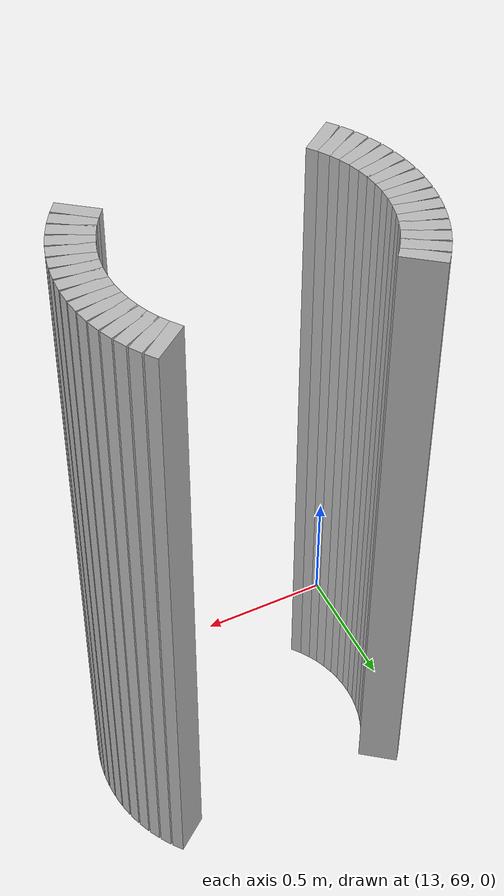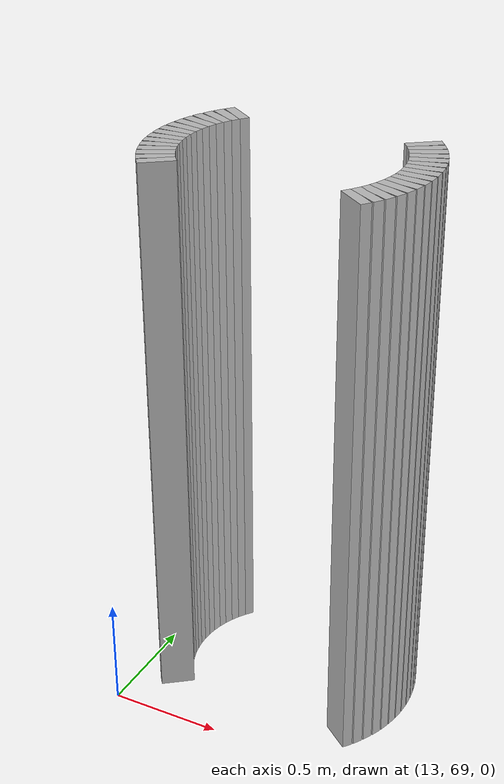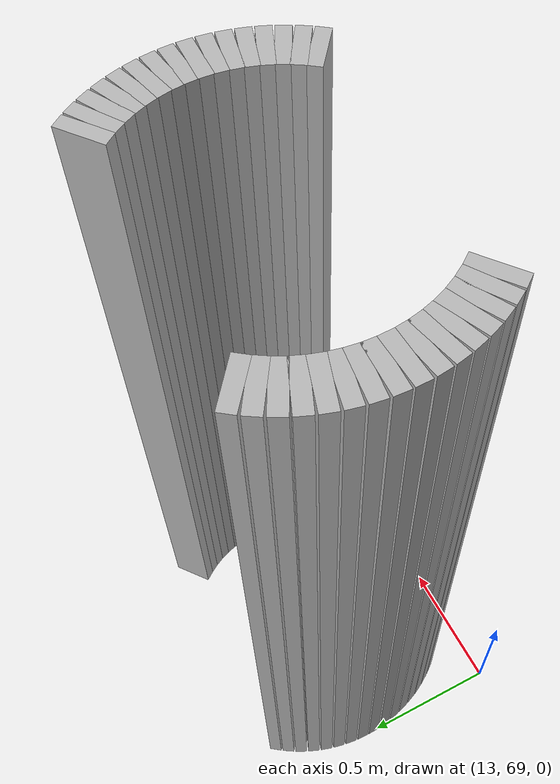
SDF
<sdf version="1.6">
 <model name="sps_1002">
  <static>1</static>
  <allow_auto_disable>0</allow_auto_disable>
  <link name="Wall2003">
   <collision name="collision"><geometry><box><size>0.0453637 0.15 2.5</size></box></geometry></collision>
   <visual name="visual">
    <geometry><box><size>0.0453637 0.15 2.5</size></box></geometry>
    <transparency>0.0</transparency>
   </visual>
   <pose>14.0033 69.8585 1.25 0 0 -0.91707</pose>
  </link>
  <link name="Wall2004">
   <collision name="collision"><geometry><box><size>0.0452906 0.15 2.5</size></box></geometry></collision>
   <visual name="visual">
    <geometry><box><size>0.0452906 0.15 2.5</size></box></geometry>
    <transparency>0.0</transparency>
   </visual>
   <pose>14.0293 69.8214 1.25 0 0 -1.00148</pose>
  </link>
  <link name="Wall2005">
   <collision name="collision"><geometry><box><size>0.045288 0.15 2.5</size></box></geometry></collision>
   <visual name="visual">
    <geometry><box><size>0.045288 0.15 2.5</size></box></geometry>
    <transparency>0.0</transparency>
   </visual>
   <pose>14.0519 69.7822 1.25 0 0 -1.09329</pose>
  </link>
  <link name="Wall2006">
   <collision name="collision"><geometry><box><size>0.0454525 0.15 2.5</size></box></geometry></collision>
   <visual name="visual">
    <geometry><box><size>0.0454525 0.15 2.5</size></box></geometry>
    <transparency>0.0</transparency>
   </visual>
   <pose>14.071 69.7411 1.25 0 0 -1.17807</pose>
  </link>
  <link name="Wall2007">
   <collision name="collision"><geometry><box><size>0.0453057 0.15 2.5</size></box></geometry></collision>
   <visual name="visual">
    <geometry><box><size>0.0453057 0.15 2.5</size></box></geometry>
    <transparency>0.0</transparency>
   </visual>
   <pose>14.0865 69.6985 1.25 0 0 -1.26566</pose>
  </link>
  <link name="Wall2008">
   <collision name="collision"><geometry><box><size>0.0454345 0.15 2.5</size></box></geometry></collision>
   <visual name="visual">
    <geometry><box><size>0.0454345 0.15 2.5</size></box></geometry>
    <transparency>0.0</transparency>
   </visual>
   <pose>14.0982 69.6547 1.25 0 0 -1.35417</pose>
  </link>
  <link name="Wall2009">
   <collision name="collision"><geometry><box><size>0.0454394 0.15 2.5</size></box></geometry></collision>
   <visual name="visual">
    <geometry><box><size>0.0454394 0.15 2.5</size></box></geometry>
    <transparency>0.0</transparency>
   </visual>
   <pose>14.106 69.61 1.25 0 0 -1.43878</pose>
  </link>
  <link name="Wall2010">
   <collision name="collision"><geometry><box><size>0.0452109 0.15 2.5</size></box></geometry></collision>
   <visual name="visual">
    <geometry><box><size>0.0452109 0.15 2.5</size></box></geometry>
    <transparency>0.0</transparency>
   </visual>
   <pose>14.11 69.5649 1.25 0 0 -1.52623</pose>
  </link>
  <link name="Wall2011">
   <collision name="collision"><geometry><box><size>0.0454548 0.15 2.5</size></box></geometry></collision>
   <visual name="visual">
    <geometry><box><size>0.0454548 0.15 2.5</size></box></geometry>
    <transparency>0.0</transparency>
   </visual>
   <pose>14.11 69.5196 1.25 0 0 -1.61512</pose>
  </link>
  <link name="Wall2012">
   <collision name="collision"><geometry><box><size>0.0453788 0.15 2.5</size></box></geometry></collision>
   <visual name="visual">
    <geometry><box><size>0.0453788 0.15 2.5</size></box></geometry>
    <transparency>0.0</transparency>
   </visual>
   <pose>14.106 69.4744 1.25 0 0 -1.70299</pose>
  </link>
  <link name="Wall2013">
   <collision name="collision"><geometry><box><size>0.0453153 0.15 2.5</size></box></geometry></collision>
   <visual name="visual">
    <geometry><box><size>0.0453153 0.15 2.5</size></box></geometry>
    <transparency>0.0</transparency>
   </visual>
   <pose>14.0982 69.4298 1.25 0 0 -1.788</pose>
  </link>
  <link name="Wall2014">
   <collision name="collision"><geometry><box><size>0.0452475 0.15 2.5</size></box></geometry></collision>
   <visual name="visual">
    <geometry><box><size>0.0452475 0.15 2.5</size></box></geometry>
    <transparency>0.0</transparency>
   </visual>
   <pose>14.0865 69.3861 1.25 0 0 -1.87634</pose>
  </link>
  <link name="Wall2015">
   <collision name="collision"><geometry><box><size>0.0455089 0.15 2.5</size></box></geometry></collision>
   <visual name="visual">
    <geometry><box><size>0.0455089 0.15 2.5</size></box></geometry>
    <transparency>0.0</transparency>
   </visual>
   <pose>14.071 69.3435 1.25 0 0 -1.96301</pose>
  </link>
  <link name="Wall2016">
   <collision name="collision"><geometry><box><size>0.0453183 0.15 2.5</size></box></geometry></collision>
   <visual name="visual">
    <geometry><box><size>0.0453183 0.15 2.5</size></box></geometry>
    <transparency>0.0</transparency>
   </visual>
   <pose>14.0518 69.3024 1.25 0 0 -2.05251</pose>
  </link>
  <link name="Wall2017">
   <collision name="collision"><geometry><box><size>0.045342 0.15 2.5</size></box></geometry></collision>
   <visual name="visual">
    <geometry><box><size>0.045342 0.15 2.5</size></box></geometry>
    <transparency>0.0</transparency>
   </visual>
   <pose>14.0291 69.2632 1.25 0 0 -2.13938</pose>
  </link>
  <link name="Wall2018">
   <collision name="collision"><geometry><box><size>0.0453637 0.15 2.5</size></box></geometry></collision>
   <visual name="visual">
    <geometry><box><size>0.0453637 0.15 2.5</size></box></geometry>
    <transparency>0.0</transparency>
   </visual>
   <pose>14.0031 69.2261 1.25 0 0 -2.22452</pose>
  </link>
  <link name="Wall2039">
   <collision name="collision"><geometry><box><size>0.0453637 0.15 2.5</size></box></geometry></collision>
   <visual name="visual">
    <geometry><box><size>0.0453637 0.15 2.5</size></box></geometry>
    <transparency>0.0</transparency>
   </visual>
   <pose>13.1787 69.2263 1.25 0 -0 2.22452</pose>
  </link>
  <link name="Wall2040">
   <collision name="collision"><geometry><box><size>0.0452437 0.15 2.5</size></box></geometry></collision>
   <visual name="visual">
    <geometry><box><size>0.0452437 0.15 2.5</size></box></geometry>
    <transparency>0.0</transparency>
   </visual>
   <pose>13.1528 69.2634 1.25 0 -0 2.13597</pose>
  </link>
  <link name="Wall2041">
   <collision name="collision"><geometry><box><size>0.0453724 0.15 2.5</size></box></geometry></collision>
   <visual name="visual">
    <geometry><box><size>0.0453724 0.15 2.5</size></box></geometry>
    <transparency>0.0</transparency>
   </visual>
   <pose>13.1301 69.3026 1.25 0 -0 2.05189</pose>
  </link>
  <link name="Wall2042">
   <collision name="collision"><geometry><box><size>0.0454525 0.15 2.5</size></box></geometry></collision>
   <visual name="visual">
    <geometry><box><size>0.0454525 0.15 2.5</size></box></geometry>
    <transparency>0.0</transparency>
   </visual>
   <pose>13.111 69.3437 1.25 0 -0 1.96352</pose>
  </link>
  <link name="Wall2043">
   <collision name="collision"><geometry><box><size>0.0453057 0.15 2.5</size></box></geometry></collision>
   <visual name="visual">
    <geometry><box><size>0.0453057 0.15 2.5</size></box></geometry>
    <transparency>0.0</transparency>
   </visual>
   <pose>13.0955 69.3863 1.25 0 -0 1.87593</pose>
  </link>
  <link name="Wall2044">
   <collision name="collision"><geometry><box><size>0.0454345 0.15 2.5</size></box></geometry></collision>
   <visual name="visual">
    <geometry><box><size>0.0454345 0.15 2.5</size></box></geometry>
    <transparency>0.0</transparency>
   </visual>
   <pose>13.0838 69.4301 1.25 0 -0 1.78743</pose>
  </link>
  <link name="Wall2045">
   <collision name="collision"><geometry><box><size>0.0453869 0.15 2.5</size></box></geometry></collision>
   <visual name="visual">
    <geometry><box><size>0.0453869 0.15 2.5</size></box></geometry>
    <transparency>0.0</transparency>
   </visual>
   <pose>13.0759 69.4748 1.25 0 -0 1.70433</pose>
  </link>
  <link name="Wall2046">
   <collision name="collision"><geometry><box><size>0.0452617 0.15 2.5</size></box></geometry></collision>
   <visual name="visual">
    <geometry><box><size>0.0452617 0.15 2.5</size></box></geometry>
    <transparency>0.0</transparency>
   </visual>
   <pose>13.072 69.5199 1.25 0 -0 1.60991</pose>
  </link>
  <link name="Wall2047">
   <collision name="collision"><geometry><box><size>0.0454446 0.15 2.5</size></box></geometry></collision>
   <visual name="visual">
    <geometry><box><size>0.0454446 0.15 2.5</size></box></geometry>
    <transparency>0.0</transparency>
   </visual>
   <pose>13.072 69.5652 1.25 0 -0 1.53184</pose>
  </link>
  <link name="Wall2048">
   <collision name="collision"><geometry><box><size>0.0453869 0.15 2.5</size></box></geometry></collision>
   <visual name="visual">
    <geometry><box><size>0.0453869 0.15 2.5</size></box></geometry>
    <transparency>0.0</transparency>
   </visual>
   <pose>13.0759 69.6104 1.25 0 -0 1.43727</pose>
  </link>
  <link name="Wall2049">
   <collision name="collision"><geometry><box><size>0.0452557 0.15 2.5</size></box></geometry></collision>
   <visual name="visual">
    <geometry><box><size>0.0452557 0.15 2.5</size></box></geometry>
    <transparency>0.0</transparency>
   </visual>
   <pose>13.0838 69.655 1.25 0 -0 1.3533</pose>
  </link>
  <link name="Wall2050">
   <collision name="collision"><geometry><box><size>0.0455355 0.15 2.5</size></box></geometry></collision>
   <visual name="visual">
    <geometry><box><size>0.0455355 0.15 2.5</size></box></geometry>
    <transparency>0.0</transparency>
   </visual>
   <pose>13.0955 69.6988 1.25 0 -0 1.26303</pose>
  </link>
  <link name="Wall2051">
   <collision name="collision"><geometry><box><size>0.0452834 0.15 2.5</size></box></geometry></collision>
   <visual name="visual">
    <geometry><box><size>0.0452834 0.15 2.5</size></box></geometry>
    <transparency>0.0</transparency>
   </visual>
   <pose>13.1111 69.7414 1.25 0 -0 1.17652</pose>
  </link>
  <link name="Wall2052">
   <collision name="collision"><geometry><box><size>0.045288 0.15 2.5</size></box></geometry></collision>
   <visual name="visual">
    <geometry><box><size>0.045288 0.15 2.5</size></box></geometry>
    <transparency>0.0</transparency>
   </visual>
   <pose>13.1302 69.7824 1.25 0 -0 1.09329</pose>
  </link>
  <link name="Wall2053">
   <collision name="collision"><geometry><box><size>0.0454964 0.15 2.5</size></box></geometry></collision>
   <visual name="visual">
    <geometry><box><size>0.0454964 0.15 2.5</size></box></geometry>
    <transparency>0.0</transparency>
   </visual>
   <pose>13.1529 69.8217 1.25 0 -0 1.00438</pose>
  </link>
  <link name="Wall2054">
   <collision name="collision"><geometry><box><size>0.0452185 0.15 2.5</size></box></geometry></collision>
   <visual name="visual">
    <geometry><box><size>0.0452185 0.15 2.5</size></box></geometry>
    <transparency>0.0</transparency>
   </visual>
   <pose>13.1789 69.8588 1.25 0 -0 0.914607</pose>
  </link>
 </model>
</sdf>
